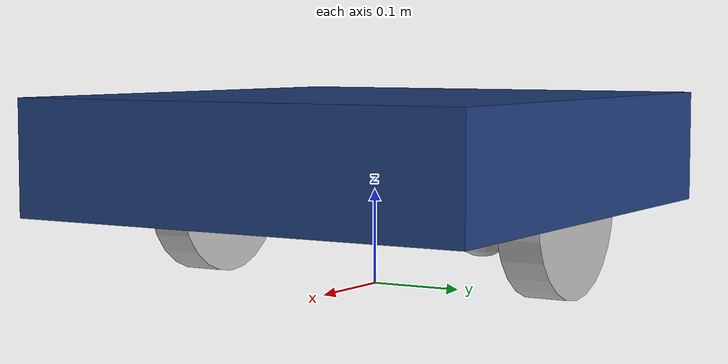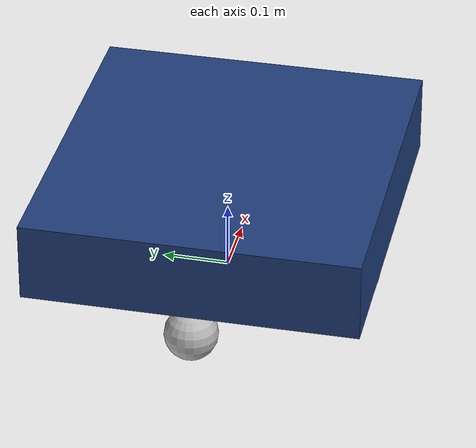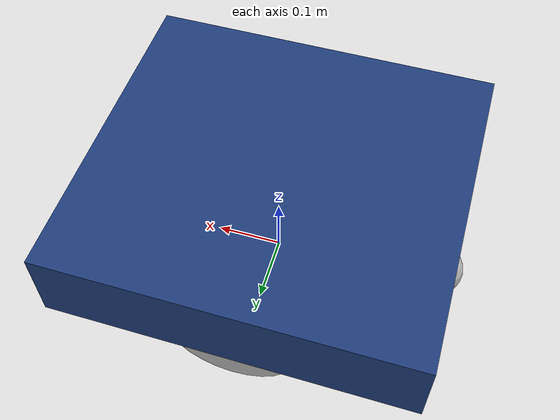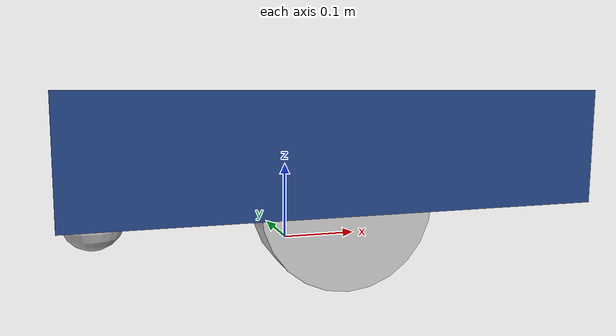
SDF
<?xml version="1.0"?>
<sdf version="1.9">
  <!-- Disposable diagnostic candidate. It is not the Cafe AMR production model. -->
  <model name="amr_robot_physics_test_caster">
    <pose>0 0 0 0 0 0</pose>
    <self_collide>false</self_collide>
    <allow_auto_disable>false</allow_auto_disable>

    <link name="chassis">
      <pose>0 0 0.14 0 0 0</pose>
      <visual name="visual">
        <geometry><box><size>0.54 0.50 0.12</size></box></geometry>
        <material><ambient>0.08 0.16 0.30 1</ambient><diffuse>0.12 0.24 0.48 1</diffuse></material>
      </visual>
      <collision name="collision"><geometry><box><size>0.54 0.50 0.12</size></box></geometry></collision>
      <inertial>
        <!-- Single-variable balance test: move COM 50 mm toward rear caster. -->
        <pose>-0.05 0 0 0 0 0</pose>
        <mass>10.0</mass>
        <inertia><ixx>0.220</ixx><iyy>0.255</iyy><izz>0.448</izz><ixy>0</ixy><ixz>0</ixz><iyz>0</iyz></inertia>
      </inertial>
    </link>

    <link name="wheel_left_link">
      <pose>0 0.21 0.09 -1.5707963 0 0</pose>
      <visual name="visual"><geometry><cylinder><radius>0.09</radius><length>0.045</length></cylinder></geometry></visual>
      <collision name="collision">
        <geometry><cylinder><radius>0.09</radius><length>0.045</length></cylinder></geometry>
        <surface><friction><ode><mu>1.0</mu><mu2>1.0</mu2><slip1>0.035</slip1><slip2>0.0</slip2></ode></friction></surface>
      </collision>
      <inertial><mass>0.5</mass><inertia><ixx>0.00110</ixx><iyy>0.00110</iyy><izz>0.00203</izz><ixy>0</ixy><ixz>0</ixz><iyz>0</iyz></inertia></inertial>
    </link>
    <joint name="wheel_left_joint" type="revolute">
      <parent>chassis</parent><child>wheel_left_link</child>
      <axis><xyz>0 0 1</xyz><limit><lower>-1.79769e+308</lower><upper>1.79769e+308</upper><effort>20</effort></limit></axis>
    </joint>

    <link name="wheel_right_link">
      <pose>0 -0.21 0.09 -1.5707963 0 0</pose>
      <visual name="visual"><geometry><cylinder><radius>0.09</radius><length>0.045</length></cylinder></geometry></visual>
      <collision name="collision">
        <geometry><cylinder><radius>0.09</radius><length>0.045</length></cylinder></geometry>
        <surface><friction><ode><mu>1.0</mu><mu2>1.0</mu2><slip1>0.035</slip1><slip2>0.0</slip2></ode></friction></surface>
      </collision>
      <inertial><mass>0.5</mass><inertia><ixx>0.00110</ixx><iyy>0.00110</iyy><izz>0.00203</izz><ixy>0</ixy><ixz>0</ixz><iyz>0</iyz></inertia></inertial>
    </link>
    <joint name="wheel_right_joint" type="revolute">
      <parent>chassis</parent><child>wheel_right_link</child>
      <axis><xyz>0 0 1</xyz><limit><lower>-1.79769e+308</lower><upper>1.79769e+308</upper><effort>20</effort></limit></axis>
    </joint>

    <!-- Explicit three-point support: 40 mm ball, centre 250 mm behind axle. -->
    <link name="caster_link">
      <pose>-0.25 0 0.04 0 0 0</pose>
      <visual name="visual"><geometry><sphere><radius>0.04</radius></sphere></geometry></visual>
      <collision name="collision">
        <geometry><sphere><radius>0.04</radius></sphere></geometry>
        <surface><friction><ode><mu>0.20</mu><mu2>0.20</mu2><slip1>0.0</slip1><slip2>0.0</slip2></ode></friction></surface>
      </collision>
      <inertial><mass>0.2</mass><inertia><ixx>0.00013</ixx><iyy>0.00013</iyy><izz>0.00013</izz><ixy>0</ixy><ixz>0</ixz><iyz>0</iyz></inertia></inertial>
    </link>
    <joint name="caster_joint" type="ball"><parent>chassis</parent><child>caster_link</child></joint>

    <plugin filename="gz-sim-joint-state-publisher-system" name="gz::sim::systems::JointStatePublisher">
      <joint_name>wheel_left_joint</joint_name><joint_name>wheel_right_joint</joint_name>
    </plugin>
    <plugin filename="gz-sim-diff-drive-system" name="gz::sim::systems::DiffDrive">
      <left_joint>wheel_left_joint</left_joint><right_joint>wheel_right_joint</right_joint>
      <wheel_separation>0.42</wheel_separation><wheel_radius>0.09</wheel_radius>
      <odom_publish_frequency>30</odom_publish_frequency>
      <max_linear_acceleration>1.0</max_linear_acceleration><min_linear_acceleration>-1.0</min_linear_acceleration>
      <max_angular_acceleration>2.0</max_angular_acceleration><min_angular_acceleration>-2.0</min_angular_acceleration>
      <max_linear_velocity>0.6</max_linear_velocity><min_linear_velocity>-0.6</min_linear_velocity>
      <max_angular_velocity>1.2</max_angular_velocity><min_angular_velocity>-1.2</min_angular_velocity>
    </plugin>
  </model>
</sdf>
